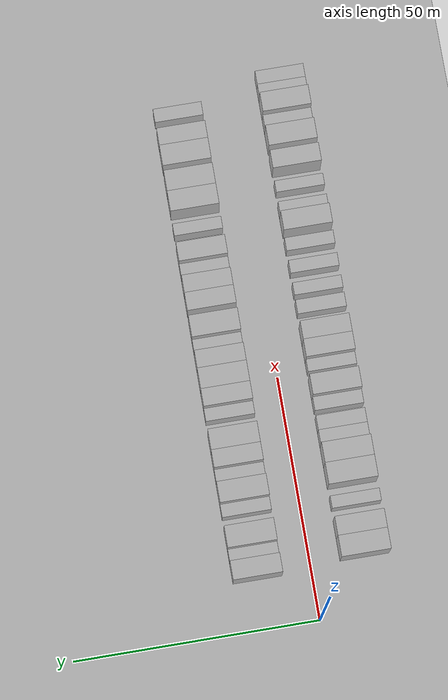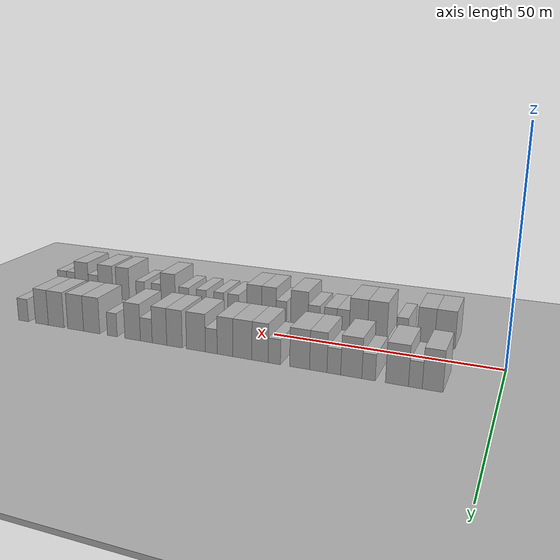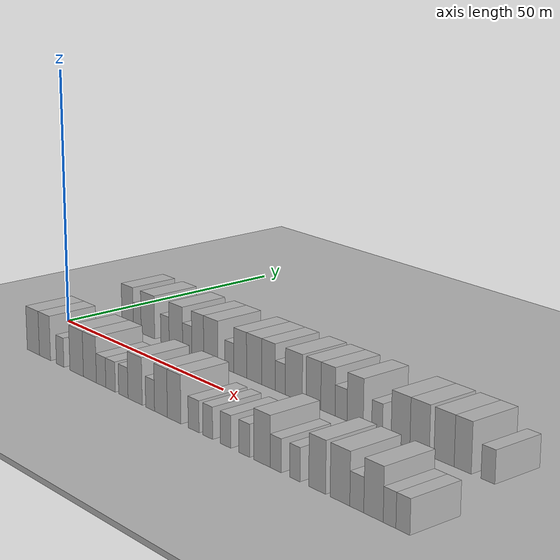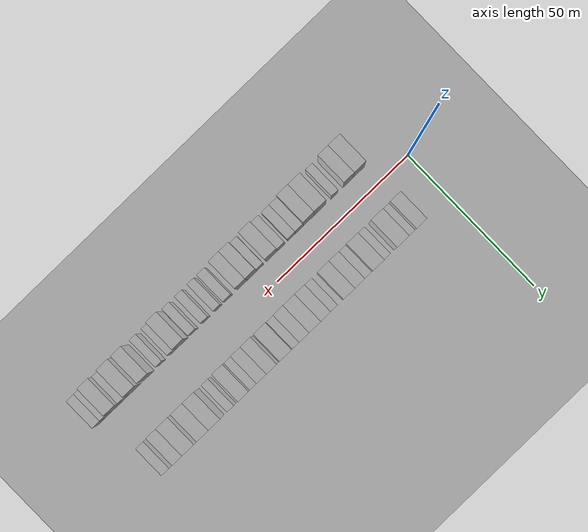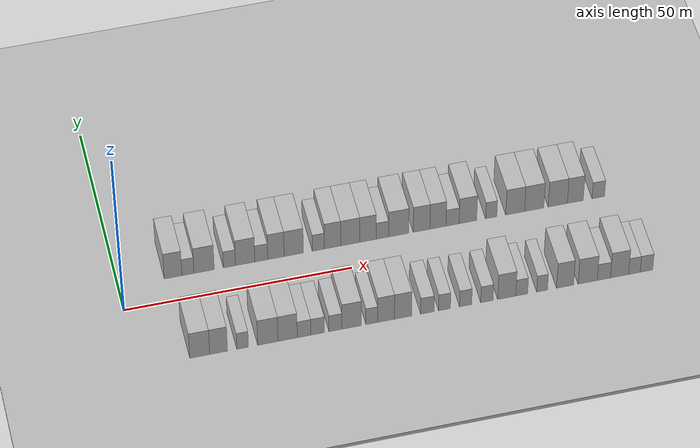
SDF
<sdf version="1.6">
 <world name="default">
  <include><name>ground_plane_1</name><uri>model://HANNAS_ground_plane</uri></include>
  <include>
   <name>ground_plane_2</name>
   <uri>model://HANNAS_ground_plane</uri>
   <pose>100 0 0  0 0 0</pose>
  </include>
  <model name="building_1">
   <static>1</static>
   <pose>11.9431 11.0000 0 0.000000 0.000000 1.570796</pose>
   <link name="link">
    <pose>0 0 4.50 0 0 0</pose>
    <collision name="collision"><geometry><box><size>10.0000 3.8863 9.0000</size></box></geometry></collision>
    <visual name="visual">
     <cast_shadows>0</cast_shadows>
     <geometry><box><size>10.0000 3.8863 9.0000</size></box></geometry>
     <material>
      <script>
       <uri>model://HANNAS_wall/materials/scripts</uri>
       <uri>model://HANNAS_wall/materials/textures</uri>
       <name>vrc/HANNAS_wall</name>
      </script>
     </material>
    </visual>
   </link>
  </model>
  <model name="building_2">
   <static>1</static>
   <pose>15.1962 11.0000 0 0.000000 0.000000 1.570796</pose>
   <link name="link">
    <pose>0 0 3.00 0 0 0</pose>
    <collision name="collision"><geometry><box><size>10.0000 2.6198 6.0000</size></box></geometry></collision>
    <visual name="visual">
     <cast_shadows>0</cast_shadows>
     <geometry><box><size>10.0000 2.6198 6.0000</size></box></geometry>
     <material>
      <script>
       <uri>model://HANNAS_wall/materials/scripts</uri>
       <uri>model://HANNAS_wall/materials/textures</uri>
       <name>vrc/HANNAS_wall</name>
      </script>
     </material>
    </visual>
   </link>
  </model>
  <model name="building_3">
   <static>1</static>
   <pose>18.7372 11.0000 0 0.000000 0.000000 1.570796</pose>
   <link name="link">
    <pose>0 0 4.50 0 0 0</pose>
    <collision name="collision"><geometry><box><size>10.0000 4.4623 9.0000</size></box></geometry></collision>
    <visual name="visual">
     <cast_shadows>0</cast_shadows>
     <geometry><box><size>10.0000 4.4623 9.0000</size></box></geometry>
     <material>
      <script>
       <uri>model://HANNAS_wall/materials/scripts</uri>
       <uri>model://HANNAS_wall/materials/textures</uri>
       <name>vrc/HANNAS_wall</name>
      </script>
     </material>
    </visual>
   </link>
  </model>
  <model name="building_4">
   <static>1</static>
   <pose>24.3067 11.0000 0 0.000000 0.000000 1.570796</pose>
   <link name="link">
    <pose>0 0 3.00 0 0 0</pose>
    <collision name="collision"><geometry><box><size>10.0000 2.6766 6.0000</size></box></geometry></collision>
    <visual name="visual">
     <cast_shadows>0</cast_shadows>
     <geometry><box><size>10.0000 2.6766 6.0000</size></box></geometry>
     <material>
      <script>
       <uri>model://HANNAS_wall/materials/scripts</uri>
       <uri>model://HANNAS_wall/materials/textures</uri>
       <name>vrc/HANNAS_wall</name>
      </script>
     </material>
    </visual>
   </link>
  </model>
  <model name="building_5">
   <static>1</static>
   <pose>27.7889 11.0000 0 0.000000 0.000000 1.570796</pose>
   <link name="link">
    <pose>0 0 4.50 0 0 0</pose>
    <collision name="collision"><geometry><box><size>10.0000 4.2879 9.0000</size></box></geometry></collision>
    <visual name="visual">
     <cast_shadows>0</cast_shadows>
     <geometry><box><size>10.0000 4.2879 9.0000</size></box></geometry>
     <material>
      <script>
       <uri>model://HANNAS_wall/materials/scripts</uri>
       <uri>model://HANNAS_wall/materials/textures</uri>
       <name>vrc/HANNAS_wall</name>
      </script>
     </material>
    </visual>
   </link>
  </model>
  <model name="building_6">
   <static>1</static>
   <pose>31.3491 11.0000 0 0.000000 0.000000 1.570796</pose>
   <link name="link">
    <pose>0 0 3.00 0 0 0</pose>
    <collision name="collision"><geometry><box><size>10.0000 2.8324 6.0000</size></box></geometry></collision>
    <visual name="visual">
     <cast_shadows>0</cast_shadows>
     <geometry><box><size>10.0000 2.8324 6.0000</size></box></geometry>
     <material>
      <script>
       <uri>model://HANNAS_wall/materials/scripts</uri>
       <uri>model://HANNAS_wall/materials/textures</uri>
       <name>vrc/HANNAS_wall</name>
      </script>
     </material>
    </visual>
   </link>
  </model>
  <model name="building_7">
   <static>1</static>
   <pose>34.5846 11.0000 0 0.000000 0.000000 1.570796</pose>
   <link name="link">
    <pose>0 0 4.50 0 0 0</pose>
    <collision name="collision"><geometry><box><size>10.0000 3.6387 9.0000</size></box></geometry></collision>
    <visual name="visual">
     <cast_shadows>0</cast_shadows>
     <geometry><box><size>10.0000 3.6387 9.0000</size></box></geometry>
     <material>
      <script>
       <uri>model://HANNAS_wall/materials/scripts</uri>
       <uri>model://HANNAS_wall/materials/textures</uri>
       <name>vrc/HANNAS_wall</name>
      </script>
     </material>
    </visual>
   </link>
  </model>
  <model name="building_8">
   <static>1</static>
   <pose>38.5252 11.0000 0 0.000000 0.000000 1.570796</pose>
   <link name="link">
    <pose>0 0 4.50 0 0 0</pose>
    <collision name="collision"><geometry><box><size>10.0000 4.2426 9.0000</size></box></geometry></collision>
    <visual name="visual">
     <cast_shadows>0</cast_shadows>
     <geometry><box><size>10.0000 4.2426 9.0000</size></box></geometry>
     <material>
      <script>
       <uri>model://HANNAS_wall/materials/scripts</uri>
       <uri>model://HANNAS_wall/materials/textures</uri>
       <name>vrc/HANNAS_wall</name>
      </script>
     </material>
    </visual>
   </link>
  </model>
  <model name="building_9">
   <static>1</static>
   <pose>43.9767 11.0000 0 0.000000 0.000000 1.570796</pose>
   <link name="link">
    <pose>0 0 3.00 0 0 0</pose>
    <collision name="collision"><geometry><box><size>10.0000 2.6604 6.0000</size></box></geometry></collision>
    <visual name="visual">
     <cast_shadows>0</cast_shadows>
     <geometry><box><size>10.0000 2.6604 6.0000</size></box></geometry>
     <material>
      <script>
       <uri>model://HANNAS_wall/materials/scripts</uri>
       <uri>model://HANNAS_wall/materials/textures</uri>
       <name>vrc/HANNAS_wall</name>
      </script>
     </material>
    </visual>
   </link>
  </model>
  <model name="building_10">
   <static>1</static>
   <pose>47.1235 11.0000 0 0.000000 0.000000 1.570796</pose>
   <link name="link">
    <pose>0 0 4.50 0 0 0</pose>
    <collision name="collision"><geometry><box><size>10.0000 3.6331 9.0000</size></box></geometry></collision>
    <visual name="visual">
     <cast_shadows>0</cast_shadows>
     <geometry><box><size>10.0000 3.6331 9.0000</size></box></geometry>
     <material>
      <script>
       <uri>model://HANNAS_wall/materials/scripts</uri>
       <uri>model://HANNAS_wall/materials/textures</uri>
       <name>vrc/HANNAS_wall</name>
      </script>
     </material>
    </visual>
   </link>
  </model>
  <model name="building_11">
   <static>1</static>
   <pose>51.0800 11.0000 0 0.000000 0.000000 1.570796</pose>
   <link name="link">
    <pose>0 0 4.50 0 0 0</pose>
    <collision name="collision"><geometry><box><size>10.0000 4.2798 9.0000</size></box></geometry></collision>
    <visual name="visual">
     <cast_shadows>0</cast_shadows>
     <geometry><box><size>10.0000 4.2798 9.0000</size></box></geometry>
     <material>
      <script>
       <uri>model://HANNAS_wall/materials/scripts</uri>
       <uri>model://HANNAS_wall/materials/textures</uri>
       <name>vrc/HANNAS_wall</name>
      </script>
     </material>
    </visual>
   </link>
  </model>
  <model name="building_12">
   <static>1</static>
   <pose>55.0376 11.0000 0 0.000000 0.000000 1.570796</pose>
   <link name="link">
    <pose>0 0 4.50 0 0 0</pose>
    <collision name="collision"><geometry><box><size>10.0000 3.6354 9.0000</size></box></geometry></collision>
    <visual name="visual">
     <cast_shadows>0</cast_shadows>
     <geometry><box><size>10.0000 3.6354 9.0000</size></box></geometry>
     <material>
      <script>
       <uri>model://HANNAS_wall/materials/scripts</uri>
       <uri>model://HANNAS_wall/materials/textures</uri>
       <name>vrc/HANNAS_wall</name>
      </script>
     </material>
    </visual>
   </link>
  </model>
  <model name="building_13">
   <static>1</static>
   <pose>58.2341 11.0000 0 0.000000 0.000000 1.570796</pose>
   <link name="link">
    <pose>0 0 3.00 0 0 0</pose>
    <collision name="collision"><geometry><box><size>10.0000 2.7576 6.0000</size></box></geometry></collision>
    <visual name="visual">
     <cast_shadows>0</cast_shadows>
     <geometry><box><size>10.0000 2.7576 6.0000</size></box></geometry>
     <material>
      <script>
       <uri>model://HANNAS_wall/materials/scripts</uri>
       <uri>model://HANNAS_wall/materials/textures</uri>
       <name>vrc/HANNAS_wall</name>
      </script>
     </material>
    </visual>
   </link>
  </model>
  <model name="building_14">
   <static>1</static>
   <pose>61.8571 11.0000 0 0.000000 0.000000 1.570796</pose>
   <link name="link">
    <pose>0 0 4.50 0 0 0</pose>
    <collision name="collision"><geometry><box><size>10.0000 4.4884 9.0000</size></box></geometry></collision>
    <visual name="visual">
     <cast_shadows>0</cast_shadows>
     <geometry><box><size>10.0000 4.4884 9.0000</size></box></geometry>
     <material>
      <script>
       <uri>model://HANNAS_wall/materials/scripts</uri>
       <uri>model://HANNAS_wall/materials/textures</uri>
       <name>vrc/HANNAS_wall</name>
      </script>
     </material>
    </visual>
   </link>
  </model>
  <model name="building_15">
   <static>1</static>
   <pose>66.9812 11.0000 0 0.000000 0.000000 1.570796</pose>
   <link name="link">
    <pose>0 0 4.50 0 0 0</pose>
    <collision name="collision"><geometry><box><size>10.0000 3.7596 9.0000</size></box></geometry></collision>
    <visual name="visual">
     <cast_shadows>0</cast_shadows>
     <geometry><box><size>10.0000 3.7596 9.0000</size></box></geometry>
     <material>
      <script>
       <uri>model://HANNAS_wall/materials/scripts</uri>
       <uri>model://HANNAS_wall/materials/textures</uri>
       <name>vrc/HANNAS_wall</name>
      </script>
     </material>
    </visual>
   </link>
  </model>
  <model name="building_16">
   <static>1</static>
   <pose>70.6647 11.0000 0 0.000000 0.000000 1.570796</pose>
   <link name="link">
    <pose>0 0 4.50 0 0 0</pose>
    <collision name="collision"><geometry><box><size>10.0000 3.6075 9.0000</size></box></geometry></collision>
    <visual name="visual">
     <cast_shadows>0</cast_shadows>
     <geometry><box><size>10.0000 3.6075 9.0000</size></box></geometry>
     <material>
      <script>
       <uri>model://HANNAS_wall/materials/scripts</uri>
       <uri>model://HANNAS_wall/materials/textures</uri>
       <name>vrc/HANNAS_wall</name>
      </script>
     </material>
    </visual>
   </link>
  </model>
  <model name="building_17">
   <static>1</static>
   <pose>73.9417 11.0000 0 0.000000 0.000000 1.570796</pose>
   <link name="link">
    <pose>0 0 3.00 0 0 0</pose>
    <collision name="collision"><geometry><box><size>10.0000 2.9465 6.0000</size></box></geometry></collision>
    <visual name="visual">
     <cast_shadows>0</cast_shadows>
     <geometry><box><size>10.0000 2.9465 6.0000</size></box></geometry>
     <material>
      <script>
       <uri>model://HANNAS_wall/materials/scripts</uri>
       <uri>model://HANNAS_wall/materials/textures</uri>
       <name>vrc/HANNAS_wall</name>
      </script>
     </material>
    </visual>
   </link>
  </model>
  <model name="building_18">
   <static>1</static>
   <pose>77.3780 11.0000 0 0.000000 0.000000 1.570796</pose>
   <link name="link">
    <pose>0 0 4.50 0 0 0</pose>
    <collision name="collision"><geometry><box><size>10.0000 3.9261 9.0000</size></box></geometry></collision>
    <visual name="visual">
     <cast_shadows>0</cast_shadows>
     <geometry><box><size>10.0000 3.9261 9.0000</size></box></geometry>
     <material>
      <script>
       <uri>model://HANNAS_wall/materials/scripts</uri>
       <uri>model://HANNAS_wall/materials/textures</uri>
       <name>vrc/HANNAS_wall</name>
      </script>
     </material>
    </visual>
   </link>
  </model>
  <model name="building_19">
   <static>1</static>
   <pose>82.6118 11.0000 0 0.000000 0.000000 1.570796</pose>
   <link name="link">
    <pose>0 0 3.00 0 0 0</pose>
    <collision name="collision"><geometry><box><size>10.0000 2.5414 6.0000</size></box></geometry></collision>
    <visual name="visual">
     <cast_shadows>0</cast_shadows>
     <geometry><box><size>10.0000 2.5414 6.0000</size></box></geometry>
     <material>
      <script>
       <uri>model://HANNAS_wall/materials/scripts</uri>
       <uri>model://HANNAS_wall/materials/textures</uri>
       <name>vrc/HANNAS_wall</name>
      </script>
     </material>
    </visual>
   </link>
  </model>
  <model name="building_20">
   <static>1</static>
   <pose>88.0223 11.0000 0 0.000000 0.000000 1.570796</pose>
   <link name="link">
    <pose>0 0 4.50 0 0 0</pose>
    <collision name="collision"><geometry><box><size>10.0000 4.2796 9.0000</size></box></geometry></collision>
    <visual name="visual">
     <cast_shadows>0</cast_shadows>
     <geometry><box><size>10.0000 4.2796 9.0000</size></box></geometry>
     <material>
      <script>
       <uri>model://HANNAS_wall/materials/scripts</uri>
       <uri>model://HANNAS_wall/materials/textures</uri>
       <name>vrc/HANNAS_wall</name>
      </script>
     </material>
    </visual>
   </link>
  </model>
  <model name="building_21">
   <static>1</static>
   <pose>92.3208 11.0000 0 0.000000 0.000000 1.570796</pose>
   <link name="link">
    <pose>0 0 4.50 0 0 0</pose>
    <collision name="collision"><geometry><box><size>10.0000 4.3175 9.0000</size></box></geometry></collision>
    <visual name="visual">
     <cast_shadows>0</cast_shadows>
     <geometry><box><size>10.0000 4.3175 9.0000</size></box></geometry>
     <material>
      <script>
       <uri>model://HANNAS_wall/materials/scripts</uri>
       <uri>model://HANNAS_wall/materials/textures</uri>
       <name>vrc/HANNAS_wall</name>
      </script>
     </material>
    </visual>
   </link>
  </model>
  <model name="building_22">
   <static>1</static>
   <pose>97.6514 11.0000 0 0.000000 0.000000 1.570796</pose>
   <link name="link">
    <pose>0 0 4.50 0 0 0</pose>
    <collision name="collision"><geometry><box><size>10.0000 4.3437 9.0000</size></box></geometry></collision>
    <visual name="visual">
     <cast_shadows>0</cast_shadows>
     <geometry><box><size>10.0000 4.3437 9.0000</size></box></geometry>
     <material>
      <script>
       <uri>model://HANNAS_wall/materials/scripts</uri>
       <uri>model://HANNAS_wall/materials/textures</uri>
       <name>vrc/HANNAS_wall</name>
      </script>
     </material>
    </visual>
   </link>
  </model>
  <model name="building_23">
   <static>1</static>
   <pose>101.6237 11.0000 0 0.000000 0.000000 1.570796</pose>
   <link name="link">
    <pose>0 0 4.50 0 0 0</pose>
    <collision name="collision"><geometry><box><size>10.0000 3.6009 9.0000</size></box></geometry></collision>
    <visual name="visual">
     <cast_shadows>0</cast_shadows>
     <geometry><box><size>10.0000 3.6009 9.0000</size></box></geometry>
     <material>
      <script>
       <uri>model://HANNAS_wall/materials/scripts</uri>
       <uri>model://HANNAS_wall/materials/textures</uri>
       <name>vrc/HANNAS_wall</name>
      </script>
     </material>
    </visual>
   </link>
  </model>
  <model name="building_24">
   <static>1</static>
   <pose>106.8404 11.0000 0 0.000000 0.000000 1.570796</pose>
   <link name="link">
    <pose>0 0 3.00 0 0 0</pose>
    <collision name="collision"><geometry><box><size>10.0000 2.8325 6.0000</size></box></geometry></collision>
    <visual name="visual">
     <cast_shadows>0</cast_shadows>
     <geometry><box><size>10.0000 2.8325 6.0000</size></box></geometry>
     <material>
      <script>
       <uri>model://HANNAS_wall/materials/scripts</uri>
       <uri>model://HANNAS_wall/materials/textures</uri>
       <name>vrc/HANNAS_wall</name>
      </script>
     </material>
    </visual>
   </link>
  </model>
  <model name="building_50">
   <static>1</static>
   <pose>13.1559 -11.0000 0 0.000000 0.000000 1.570796</pose>
   <link name="link">
    <pose>0 0 4.50 0 0 0</pose>
    <collision name="collision"><geometry><box><size>10.0000 4.3118 9.0000</size></box></geometry></collision>
    <visual name="visual">
     <cast_shadows>0</cast_shadows>
     <geometry><box><size>10.0000 4.3118 9.0000</size></box></geometry>
     <material>
      <script>
       <uri>model://HANNAS_wall/materials/scripts</uri>
       <uri>model://HANNAS_wall/materials/textures</uri>
       <name>vrc/HANNAS_wall</name>
      </script>
     </material>
    </visual>
   </link>
  </model>
  <model name="building_51">
   <static>1</static>
   <pose>17.2346 -11.0000 0 0.000000 0.000000 1.570796</pose>
   <link name="link">
    <pose>0 0 4.50 0 0 0</pose>
    <collision name="collision"><geometry><box><size>10.0000 3.8455 9.0000</size></box></geometry></collision>
    <visual name="visual">
     <cast_shadows>0</cast_shadows>
     <geometry><box><size>10.0000 3.8455 9.0000</size></box></geometry>
     <material>
      <script>
       <uri>model://HANNAS_wall/materials/scripts</uri>
       <uri>model://HANNAS_wall/materials/textures</uri>
       <name>vrc/HANNAS_wall</name>
      </script>
     </material>
    </visual>
   </link>
  </model>
  <model name="building_52">
   <static>1</static>
   <pose>22.4255 -11.0000 0 0.000000 0.000000 1.570796</pose>
   <link name="link">
    <pose>0 0 3.00 0 0 0</pose>
    <collision name="collision"><geometry><box><size>10.0000 2.5362 6.0000</size></box></geometry></collision>
    <visual name="visual">
     <cast_shadows>0</cast_shadows>
     <geometry><box><size>10.0000 2.5362 6.0000</size></box></geometry>
     <material>
      <script>
       <uri>model://HANNAS_wall/materials/scripts</uri>
       <uri>model://HANNAS_wall/materials/textures</uri>
       <name>vrc/HANNAS_wall</name>
      </script>
     </material>
    </visual>
   </link>
  </model>
  <model name="building_53">
   <static>1</static>
   <pose>27.9107 -11.0000 0 0.000000 0.000000 1.570796</pose>
   <link name="link">
    <pose>0 0 4.50 0 0 0</pose>
    <collision name="collision"><geometry><box><size>10.0000 4.4341 9.0000</size></box></geometry></collision>
    <visual name="visual">
     <cast_shadows>0</cast_shadows>
     <geometry><box><size>10.0000 4.4341 9.0000</size></box></geometry>
     <material>
      <script>
       <uri>model://HANNAS_wall/materials/scripts</uri>
       <uri>model://HANNAS_wall/materials/textures</uri>
       <name>vrc/HANNAS_wall</name>
      </script>
     </material>
    </visual>
   </link>
  </model>
  <model name="building_54">
   <static>1</static>
   <pose>32.2062 -11.0000 0 0.000000 0.000000 1.570796</pose>
   <link name="link">
    <pose>0 0 4.50 0 0 0</pose>
    <collision name="collision"><geometry><box><size>10.0000 4.1569 9.0000</size></box></geometry></collision>
    <visual name="visual">
     <cast_shadows>0</cast_shadows>
     <geometry><box><size>10.0000 4.1569 9.0000</size></box></geometry>
     <material>
      <script>
       <uri>model://HANNAS_wall/materials/scripts</uri>
       <uri>model://HANNAS_wall/materials/textures</uri>
       <name>vrc/HANNAS_wall</name>
      </script>
     </material>
    </visual>
   </link>
  </model>
  <model name="building_55">
   <static>1</static>
   <pose>35.7698 -11.0000 0 0.000000 0.000000 1.570796</pose>
   <link name="link">
    <pose>0 0 3.00 0 0 0</pose>
    <collision name="collision"><geometry><box><size>10.0000 2.9703 6.0000</size></box></geometry></collision>
    <visual name="visual">
     <cast_shadows>0</cast_shadows>
     <geometry><box><size>10.0000 2.9703 6.0000</size></box></geometry>
     <material>
      <script>
       <uri>model://HANNAS_wall/materials/scripts</uri>
       <uri>model://HANNAS_wall/materials/textures</uri>
       <name>vrc/HANNAS_wall</name>
      </script>
     </material>
    </visual>
   </link>
  </model>
  <model name="building_56">
   <static>1</static>
   <pose>38.7288 -11.0000 0 0.000000 0.000000 1.570796</pose>
   <link name="link">
    <pose>0 0 3.00 0 0 0</pose>
    <collision name="collision"><geometry><box><size>10.0000 2.9477 6.0000</size></box></geometry></collision>
    <visual name="visual">
     <cast_shadows>0</cast_shadows>
     <geometry><box><size>10.0000 2.9477 6.0000</size></box></geometry>
     <material>
      <script>
       <uri>model://HANNAS_wall/materials/scripts</uri>
       <uri>model://HANNAS_wall/materials/textures</uri>
       <name>vrc/HANNAS_wall</name>
      </script>
     </material>
    </visual>
   </link>
  </model>
  <model name="building_57">
   <static>1</static>
   <pose>42.6209 -11.0000 0 0.000000 0.000000 1.570796</pose>
   <link name="link">
    <pose>0 0 3.00 0 0 0</pose>
    <collision name="collision"><geometry><box><size>10.0000 2.8363 6.0000</size></box></geometry></collision>
    <visual name="visual">
     <cast_shadows>0</cast_shadows>
     <geometry><box><size>10.0000 2.8363 6.0000</size></box></geometry>
     <material>
      <script>
       <uri>model://HANNAS_wall/materials/scripts</uri>
       <uri>model://HANNAS_wall/materials/textures</uri>
       <name>vrc/HANNAS_wall</name>
      </script>
     </material>
    </visual>
   </link>
  </model>
  <model name="building_58">
   <static>1</static>
   <pose>46.1540 -11.0000 0 0.000000 0.000000 1.570796</pose>
   <link name="link">
    <pose>0 0 4.50 0 0 0</pose>
    <collision name="collision"><geometry><box><size>10.0000 4.2300 9.0000</size></box></geometry></collision>
    <visual name="visual">
     <cast_shadows>0</cast_shadows>
     <geometry><box><size>10.0000 4.2300 9.0000</size></box></geometry>
     <material>
      <script>
       <uri>model://HANNAS_wall/materials/scripts</uri>
       <uri>model://HANNAS_wall/materials/textures</uri>
       <name>vrc/HANNAS_wall</name>
      </script>
     </material>
    </visual>
   </link>
  </model>
  <model name="building_59">
   <static>1</static>
   <pose>50.5515 -11.0000 0 0.000000 0.000000 1.570796</pose>
   <link name="link">
    <pose>0 0 3.00 0 0 0</pose>
    <collision name="collision"><geometry><box><size>10.0000 2.5649 6.0000</size></box></geometry></collision>
    <visual name="visual">
     <cast_shadows>0</cast_shadows>
     <geometry><box><size>10.0000 2.5649 6.0000</size></box></geometry>
     <material>
      <script>
       <uri>model://HANNAS_wall/materials/scripts</uri>
       <uri>model://HANNAS_wall/materials/textures</uri>
       <name>vrc/HANNAS_wall</name>
      </script>
     </material>
    </visual>
   </link>
  </model>
  <model name="building_60">
   <static>1</static>
   <pose>53.6623 -11.0000 0 0.000000 0.000000 1.570796</pose>
   <link name="link">
    <pose>0 0 4.50 0 0 0</pose>
    <collision name="collision"><geometry><box><size>10.0000 3.6568 9.0000</size></box></geometry></collision>
    <visual name="visual">
     <cast_shadows>0</cast_shadows>
     <geometry><box><size>10.0000 3.6568 9.0000</size></box></geometry>
     <material>
      <script>
       <uri>model://HANNAS_wall/materials/scripts</uri>
       <uri>model://HANNAS_wall/materials/textures</uri>
       <name>vrc/HANNAS_wall</name>
      </script>
     </material>
    </visual>
   </link>
  </model>
  <model name="building_61">
   <static>1</static>
   <pose>57.3813 -11.0000 0 0.000000 0.000000 1.570796</pose>
   <link name="link">
    <pose>0 0 4.50 0 0 0</pose>
    <collision name="collision"><geometry><box><size>10.0000 3.7811 9.0000</size></box></geometry></collision>
    <visual name="visual">
     <cast_shadows>0</cast_shadows>
     <geometry><box><size>10.0000 3.7811 9.0000</size></box></geometry>
     <material>
      <script>
       <uri>model://HANNAS_wall/materials/scripts</uri>
       <uri>model://HANNAS_wall/materials/textures</uri>
       <name>vrc/HANNAS_wall</name>
      </script>
     </material>
    </visual>
   </link>
  </model>
  <model name="building_62">
   <static>1</static>
   <pose>62.7413 -11.0000 0 0.000000 0.000000 1.570796</pose>
   <link name="link">
    <pose>0 0 3.00 0 0 0</pose>
    <collision name="collision"><geometry><box><size>10.0000 2.9390 6.0000</size></box></geometry></collision>
    <visual name="visual">
     <cast_shadows>0</cast_shadows>
     <geometry><box><size>10.0000 2.9390 6.0000</size></box></geometry>
     <material>
      <script>
       <uri>model://HANNAS_wall/materials/scripts</uri>
       <uri>model://HANNAS_wall/materials/textures</uri>
       <name>vrc/HANNAS_wall</name>
      </script>
     </material>
    </visual>
   </link>
  </model>
  <model name="building_63">
   <static>1</static>
   <pose>66.5079 -11.0000 0 0.000000 0.000000 1.570796</pose>
   <link name="link">
    <pose>0 0 3.00 0 0 0</pose>
    <collision name="collision"><geometry><box><size>10.0000 2.5941 6.0000</size></box></geometry></collision>
    <visual name="visual">
     <cast_shadows>0</cast_shadows>
     <geometry><box><size>10.0000 2.5941 6.0000</size></box></geometry>
     <material>
      <script>
       <uri>model://HANNAS_wall/materials/scripts</uri>
       <uri>model://HANNAS_wall/materials/textures</uri>
       <name>vrc/HANNAS_wall</name>
      </script>
     </material>
    </visual>
   </link>
  </model>
  <model name="building_64">
   <static>1</static>
   <pose>71.1554 -11.0000 0 0.000000 0.000000 1.570796</pose>
   <link name="link">
    <pose>0 0 3.00 0 0 0</pose>
    <collision name="collision"><geometry><box><size>10.0000 2.7009 6.0000</size></box></geometry></collision>
    <visual name="visual">
     <cast_shadows>0</cast_shadows>
     <geometry><box><size>10.0000 2.7009 6.0000</size></box></geometry>
     <material>
      <script>
       <uri>model://HANNAS_wall/materials/scripts</uri>
       <uri>model://HANNAS_wall/materials/textures</uri>
       <name>vrc/HANNAS_wall</name>
      </script>
     </material>
    </visual>
   </link>
  </model>
  <model name="building_65">
   <static>1</static>
   <pose>75.8728 -11.0000 0 0.000000 0.000000 1.570796</pose>
   <link name="link">
    <pose>0 0 3.00 0 0 0</pose>
    <collision name="collision"><geometry><box><size>10.0000 2.7339 6.0000</size></box></geometry></collision>
    <visual name="visual">
     <cast_shadows>0</cast_shadows>
     <geometry><box><size>10.0000 2.7339 6.0000</size></box></geometry>
     <material>
      <script>
       <uri>model://HANNAS_wall/materials/scripts</uri>
       <uri>model://HANNAS_wall/materials/textures</uri>
       <name>vrc/HANNAS_wall</name>
      </script>
     </material>
    </visual>
   </link>
  </model>
  <model name="building_66">
   <static>1</static>
   <pose>80.2541 -11.0000 0 0.000000 0.000000 1.570796</pose>
   <link name="link">
    <pose>0 0 4.50 0 0 0</pose>
    <collision name="collision"><geometry><box><size>10.0000 4.0289 9.0000</size></box></geometry></collision>
    <visual name="visual">
     <cast_shadows>0</cast_shadows>
     <geometry><box><size>10.0000 4.0289 9.0000</size></box></geometry>
     <material>
      <script>
       <uri>model://HANNAS_wall/materials/scripts</uri>
       <uri>model://HANNAS_wall/materials/textures</uri>
       <name>vrc/HANNAS_wall</name>
      </script>
     </material>
    </visual>
   </link>
  </model>
  <model name="building_67">
   <static>1</static>
   <pose>83.5742 -11.0000 0 0.000000 0.000000 1.570796</pose>
   <link name="link">
    <pose>0 0 3.00 0 0 0</pose>
    <collision name="collision"><geometry><box><size>10.0000 2.6113 6.0000</size></box></geometry></collision>
    <visual name="visual">
     <cast_shadows>0</cast_shadows>
     <geometry><box><size>10.0000 2.6113 6.0000</size></box></geometry>
     <material>
      <script>
       <uri>model://HANNAS_wall/materials/scripts</uri>
       <uri>model://HANNAS_wall/materials/textures</uri>
       <name>vrc/HANNAS_wall</name>
      </script>
     </material>
    </visual>
   </link>
  </model>
  <model name="building_68">
   <static>1</static>
   <pose>88.0871 -11.0000 0 0.000000 0.000000 1.570796</pose>
   <link name="link">
    <pose>0 0 3.00 0 0 0</pose>
    <collision name="collision"><geometry><box><size>10.0000 2.4144 6.0000</size></box></geometry></collision>
    <visual name="visual">
     <cast_shadows>0</cast_shadows>
     <geometry><box><size>10.0000 2.4144 6.0000</size></box></geometry>
     <material>
      <script>
       <uri>model://HANNAS_wall/materials/scripts</uri>
       <uri>model://HANNAS_wall/materials/textures</uri>
       <name>vrc/HANNAS_wall</name>
      </script>
     </material>
    </visual>
   </link>
  </model>
  <model name="building_69">
   <static>1</static>
   <pose>93.1912 -11.0000 0 0.000000 0.000000 1.570796</pose>
   <link name="link">
    <pose>0 0 4.50 0 0 0</pose>
    <collision name="collision"><geometry><box><size>10.0000 3.7938 9.0000</size></box></geometry></collision>
    <visual name="visual">
     <cast_shadows>0</cast_shadows>
     <geometry><box><size>10.0000 3.7938 9.0000</size></box></geometry>
     <material>
      <script>
       <uri>model://HANNAS_wall/materials/scripts</uri>
       <uri>model://HANNAS_wall/materials/textures</uri>
       <name>vrc/HANNAS_wall</name>
      </script>
     </material>
    </visual>
   </link>
  </model>
  <model name="building_70">
   <static>1</static>
   <pose>98.2286 -11.0000 0 0.000000 0.000000 1.570796</pose>
   <link name="link">
    <pose>0 0 4.50 0 0 0</pose>
    <collision name="collision"><geometry><box><size>10.0000 4.2812 9.0000</size></box></geometry></collision>
    <visual name="visual">
     <cast_shadows>0</cast_shadows>
     <geometry><box><size>10.0000 4.2812 9.0000</size></box></geometry>
     <material>
      <script>
       <uri>model://HANNAS_wall/materials/scripts</uri>
       <uri>model://HANNAS_wall/materials/textures</uri>
       <name>vrc/HANNAS_wall</name>
      </script>
     </material>
    </visual>
   </link>
  </model>
  <model name="building_71">
   <static>1</static>
   <pose>101.8513 -11.0000 0 0.000000 0.000000 1.570796</pose>
   <link name="link">
    <pose>0 0 3.00 0 0 0</pose>
    <collision name="collision"><geometry><box><size>10.0000 2.9641 6.0000</size></box></geometry></collision>
    <visual name="visual">
     <cast_shadows>0</cast_shadows>
     <geometry><box><size>10.0000 2.9641 6.0000</size></box></geometry>
     <material>
      <script>
       <uri>model://HANNAS_wall/materials/scripts</uri>
       <uri>model://HANNAS_wall/materials/textures</uri>
       <name>vrc/HANNAS_wall</name>
      </script>
     </material>
    </visual>
   </link>
  </model>
  <model name="building_72">
   <static>1</static>
   <pose>105.3528 -11.0000 0 0.000000 0.000000 1.570796</pose>
   <link name="link">
    <pose>0 0 4.50 0 0 0</pose>
    <collision name="collision"><geometry><box><size>10.0000 4.0390 9.0000</size></box></geometry></collision>
    <visual name="visual">
     <cast_shadows>0</cast_shadows>
     <geometry><box><size>10.0000 4.0390 9.0000</size></box></geometry>
     <material>
      <script>
       <uri>model://HANNAS_wall/materials/scripts</uri>
       <uri>model://HANNAS_wall/materials/textures</uri>
       <name>vrc/HANNAS_wall</name>
      </script>
     </material>
    </visual>
   </link>
  </model>
  <model name="building_73">
   <static>1</static>
   <pose>108.6617 -11.0000 0 0.000000 0.000000 1.570796</pose>
   <link name="link">
    <pose>0 0 3.00 0 0 0</pose>
    <collision name="collision"><geometry><box><size>10.0000 2.5790 6.0000</size></box></geometry></collision>
    <visual name="visual">
     <cast_shadows>0</cast_shadows>
     <geometry><box><size>10.0000 2.5790 6.0000</size></box></geometry>
     <material>
      <script>
       <uri>model://HANNAS_wall/materials/scripts</uri>
       <uri>model://HANNAS_wall/materials/textures</uri>
       <name>vrc/HANNAS_wall</name>
      </script>
     </material>
    </visual>
   </link>
  </model>
  <model name="building_74">
   <static>1</static>
   <pose>111.3557 -11.0000 0 0.000000 0.000000 1.570796</pose>
   <link name="link">
    <pose>0 0 3.00 0 0 0</pose>
    <collision name="collision"><geometry><box><size>10.0000 2.8090 6.0000</size></box></geometry></collision>
    <visual name="visual">
     <cast_shadows>0</cast_shadows>
     <geometry><box><size>10.0000 2.8090 6.0000</size></box></geometry>
     <material>
      <script>
       <uri>model://HANNAS_wall/materials/scripts</uri>
       <uri>model://HANNAS_wall/materials/textures</uri>
       <name>vrc/HANNAS_wall</name>
      </script>
     </material>
    </visual>
   </link>
  </model>
 </world>
</sdf>
